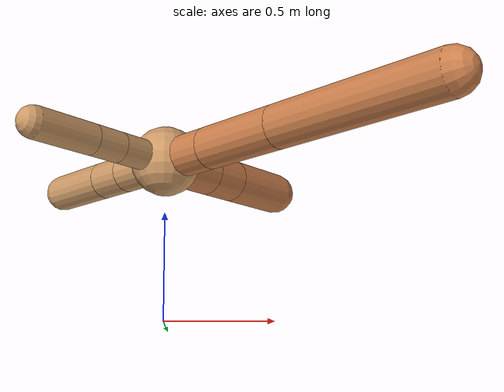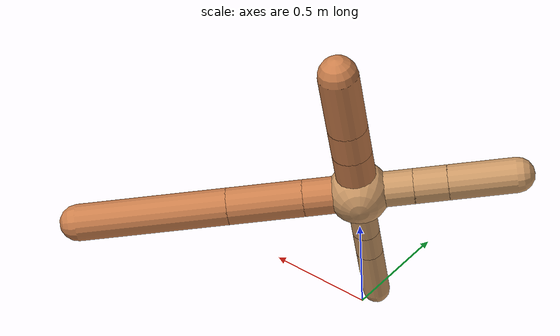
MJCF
<?xml version="1.0" ?>
<mujoco model="ant">

	<compiler angle="degree" coordinate="local" inertiafromgeom="true"/>

	<option integrator="RK4" timestep="0.01"/>

	<custom>

		<numeric data="0.0 0.0 0.55 1.0 0.0 0.0 0.0 0.0 1.0 0.0 -1.0 0.0 -1.0 0.0 1.0" name="init_qpos"/>

	</custom>

	<default>

		<joint armature="1" damping="1" limited="true"/>

		<geom conaffinity="0" condim="3" density="5.0" friction="1.5 0.1 0.1" margin="0.01" rgba="0.8 0.6 0.4 1"/>

	</default>

	<worldbody>

		<body name="torso" pos="0 0 0.75">

			<geom name="torso_geom" pos="0 0 0" size="0.16366011042680942" type="sphere"/>

			<!--joint armature="0" damping="0" limited="false" margin="0.01" name="root" pos="0 0 0" type="free"/-->

			<body name="front_left_leg" pos="0 0 0">

				<geom fromto="0 0 0 0.2 0.2 0" name="aux_1_geom" size="0.10332120566430497" type="capsule" rgba=".8 .5 .3 1"/>

				<body name="aux_1" pos="0.2 0.2 0">

					<joint axis="0 0 1" name="hip_1" pos="0.0 0.0 0.0" range="-40 40" type="hinge"/>

					<geom fromto="0 0 0 0.11989303231610378 0.11989303231610378 0" name="left_leg_geom" size="0.10332120566430497" type="capsule" rgba=".8 .5 .3 1"/>

					<body pos="0.11989303231610378 0.11989303231610378 0" name="front_left_foot">

						<joint axis="-1 1 0" name="ankle_1" pos="0.0 0.0 0.0" range="30 100" type="hinge"/>

						<geom fromto="0 0 0 0.23978606463220756 0.23978606463220756 0" name="left_ankle_geom" size="0.10332120566430497" type="capsule" rgba=".8 .5 .3 1"/>

					</body>

				</body>

			</body>

			<body name="front_right_leg" pos="0 0 0">

				<geom fromto="0 0 0 -0.2 0.2 0" name="aux_2_geom" size="0.09100353458784814" type="capsule"/>

				<body name="aux_2" pos="-0.2 0.2 0">

					<joint axis="0 0 1" name="hip_2" pos="0.0 0.0 0.0" range="-40 40" type="hinge"/>

					<geom fromto="0 0 0 -0.12403265049767911 0.12403265049767911 0" name="right_leg_geom" size="0.09100353458784814" type="capsule"/>

					<body pos="-0.12403265049767911 0.12403265049767911 0" name="front_right_foot">

						<joint axis="1 1 0" name="ankle_2" pos="0.0 0.0 0.0" range="-100 -30" type="hinge"/>

						<geom fromto="0 0 0 -0.24806530099535823 0.24806530099535823 0" name="right_ankle_geom" size="0.09100353458784814" type="capsule"/>

					</body>

				</body>

			</body>

			<body name="left_back_leg" pos="0 0 0">

				<geom fromto="0 0 0 -0.2 -0.2 0" name="aux_3_geom" size="0.0709838834045822" type="capsule"/>

				<body name="aux_3" pos="-0.2 -0.2 0">

					<joint axis="0 0 1" name="hip_3" pos="0.0 0.0 0.0" range="-40 40" type="hinge"/>

					<geom fromto="0 0 0 -0.1052516828489014 -0.1052516828489014 0" name="back_leg_geom" size="0.0709838834045822" type="capsule"/>

					<body pos="-0.1052516828489014 -0.1052516828489014 0" name="left_back_foot">

						<joint axis="-1 1 0" name="ankle_3" pos="0.0 0.0 0.0" range="-100 -30" type="hinge"/>

						<geom fromto="0 0 0 -0.2105033656978028 -0.2105033656978028 0" name="third_ankle_geom" size="0.0709838834045822" type="capsule"/>

					</body>

				</body>

			</body>

			<body name="right_back_leg" pos="0 0 0">

				<geom fromto="0 0 0 0.2 -0.2 0" name="aux_4_geom" size="0.09596424739956647" type="capsule" rgba=".8 .5 .3 1"/>

				<body name="aux_4" pos="0.2 -0.2 0">

					<joint axis="0 0 1" name="hip_4" pos="0.0 0.0 0.0" range="-40 40" type="hinge"/>

					<geom fromto="0 0 0 0.27890766274841666 -0.27890766274841666 0" name="rightback_leg_geom" size="0.09596424739956647" type="capsule" rgba=".8 .5 .3 1"/>

					<body pos="0.27890766274841666 -0.27890766274841666 0" name="right_back_foot">

						<joint axis="1 1 0" name="ankle_4" pos="0.0 0.0 0.0" range="30 100" type="hinge"/>

						<geom fromto="0 0 0 0.5578153254968333 -0.5578153254968333 0" name="fourth_ankle_geom" size="0.09596424739956647" type="capsule" rgba=".8 .5 .3 1"/>

					</body>

				</body>

			</body>

		</body>

	</worldbody>

	<actuator>

		<motor ctrllimited="true" ctrlrange="-1.0 1.0" joint="hip_4" gear="150"/>

		<motor ctrllimited="true" ctrlrange="-1.0 1.0" joint="ankle_4" gear="150"/>

		<motor ctrllimited="true" ctrlrange="-1.0 1.0" joint="hip_1" gear="150"/>

		<motor ctrllimited="true" ctrlrange="-1.0 1.0" joint="ankle_1" gear="150"/>

		<motor ctrllimited="true" ctrlrange="-1.0 1.0" joint="hip_2" gear="150"/>

		<motor ctrllimited="true" ctrlrange="-1.0 1.0" joint="ankle_2" gear="150"/>

		<motor ctrllimited="true" ctrlrange="-1.0 1.0" joint="hip_3" gear="150"/>

		<motor ctrllimited="true" ctrlrange="-1.0 1.0" joint="ankle_3" gear="150"/>

	</actuator>

</mujoco>
